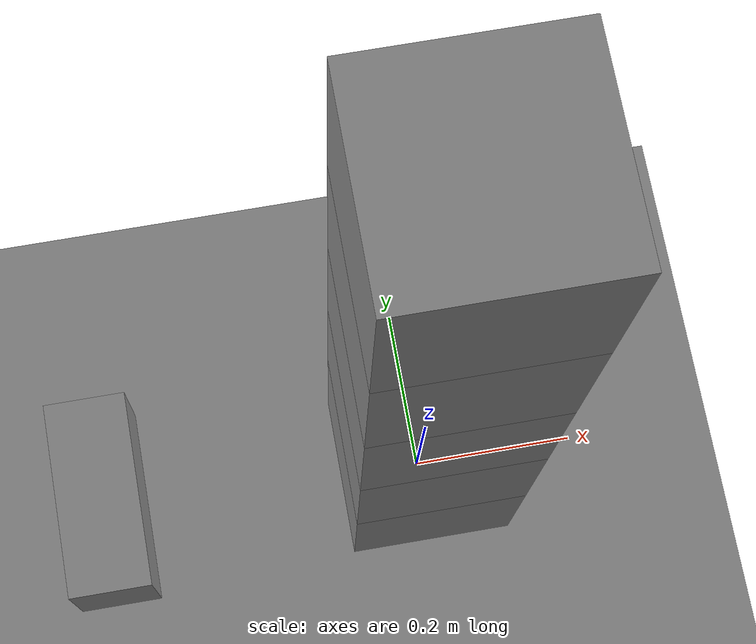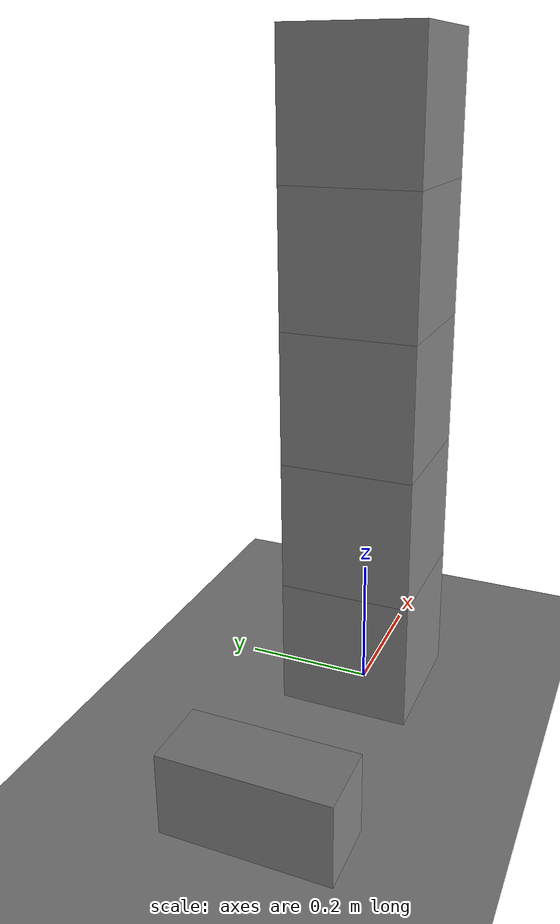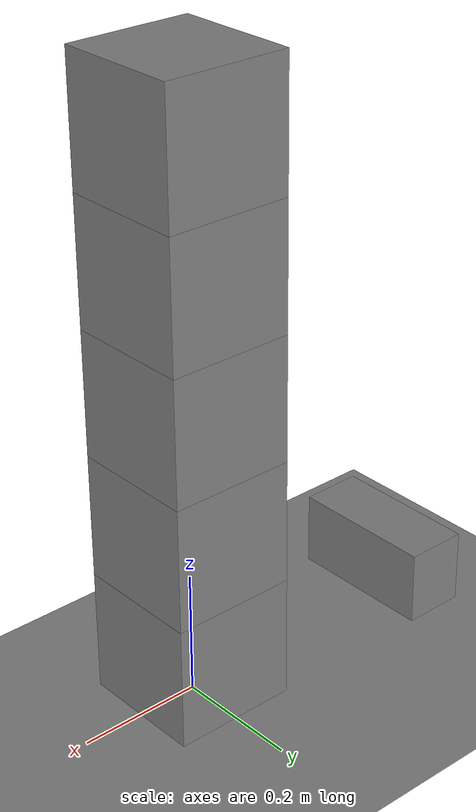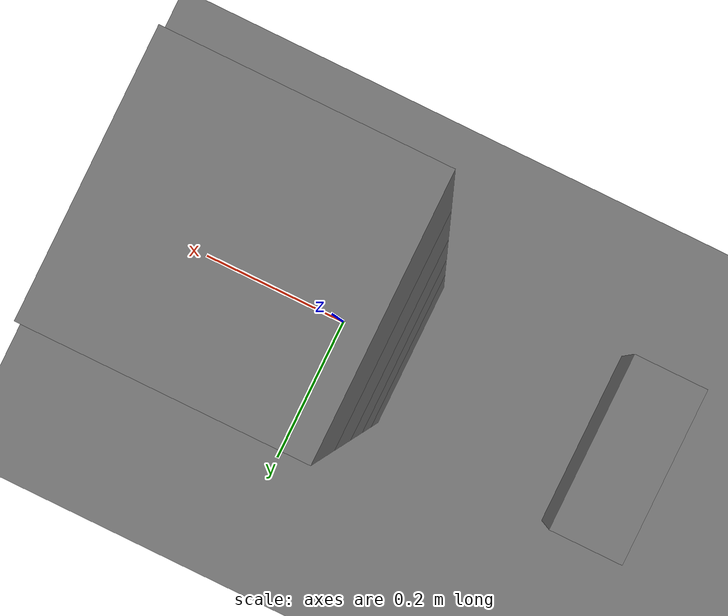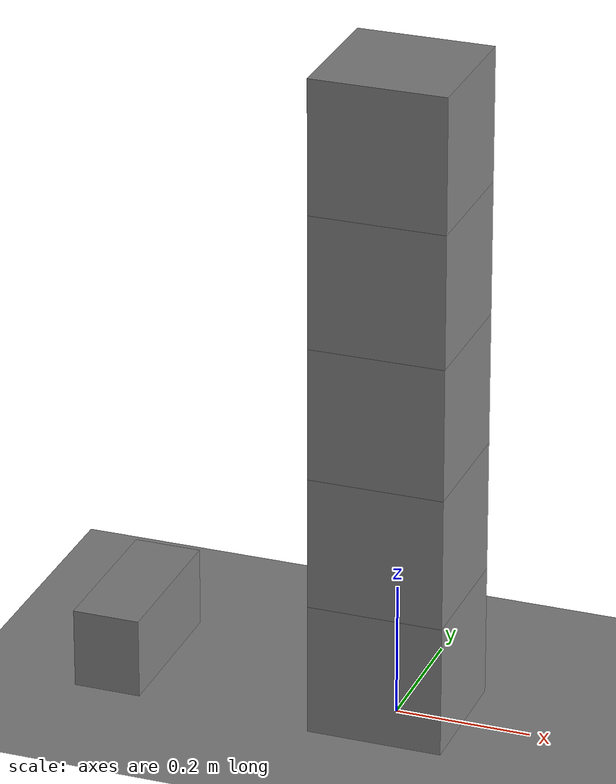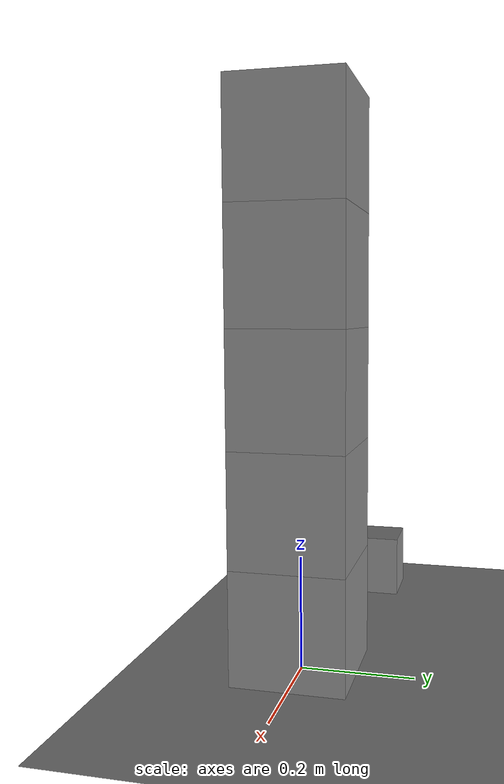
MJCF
<mujoco model="stack_fixture">
  <option timestep="0.002"/>
  <worldbody>
    <geom name="floor" type="plane" size="6 6 0.1" friction="0.6 0.005 0.0001"/>
    <body name="block1" pos="0 0 0.100">
      <freejoint/>
      <geom name="block1" type="box" size="0.1 0.1 0.1" mass="0.5" friction="0.8 0.005 0.0001"/>
    </body>
    <body name="block2" pos="0 0 0.300">
      <freejoint/>
      <geom name="block2" type="box" size="0.1 0.1 0.1" mass="0.5" friction="0.8 0.005 0.0001"/>
    </body>
    <body name="block3" pos="0 0 0.500">
      <freejoint/>
      <geom name="block3" type="box" size="0.1 0.1 0.1" mass="0.5" friction="0.8 0.005 0.0001"/>
    </body>
    <body name="block4" pos="0 0 0.700">
      <freejoint/>
      <geom name="block4" type="box" size="0.1 0.1 0.1" mass="0.5" friction="0.8 0.005 0.0001"/>
    </body>
    <body name="block5" pos="0 0 0.900">
      <freejoint/>
      <geom name="block5" type="box" size="0.1 0.1 0.1" mass="0.5" friction="0.8 0.005 0.0001"/>
    </body>
    <body name="pusher" pos="-0.4 0 0.08">
      <joint name="pusher_x" type="slide" axis="1 0 0" limited="true" range="0 1.2" damping="0"/>
      <geom name="pusher" type="box" size="0.05 0.12 0.06" mass="5.0" friction="0.3 0.005 0.0001"/>
    </body>
  </worldbody>
  <actuator>
    <velocity name="push" joint="pusher_x" kv="500" ctrlrange="0 2" forcerange="-400 400"/>
  </actuator>
  <keyframe>
    <key name="start" qpos="0 0 0.100 1 0 0 0  0 0 0.300 1 0 0 0  0 0 0.500 1 0 0 0  0 0 0.700 1 0 0 0  0 0 0.900 1 0 0 0  0" qvel="0 0 0 0 0 0  0 0 0 0 0 0  0 0 0 0 0 0  0 0 0 0 0 0  0 0 0 0 0 0  1.5" ctrl="1.5"/>
  </keyframe>
</mujoco>
